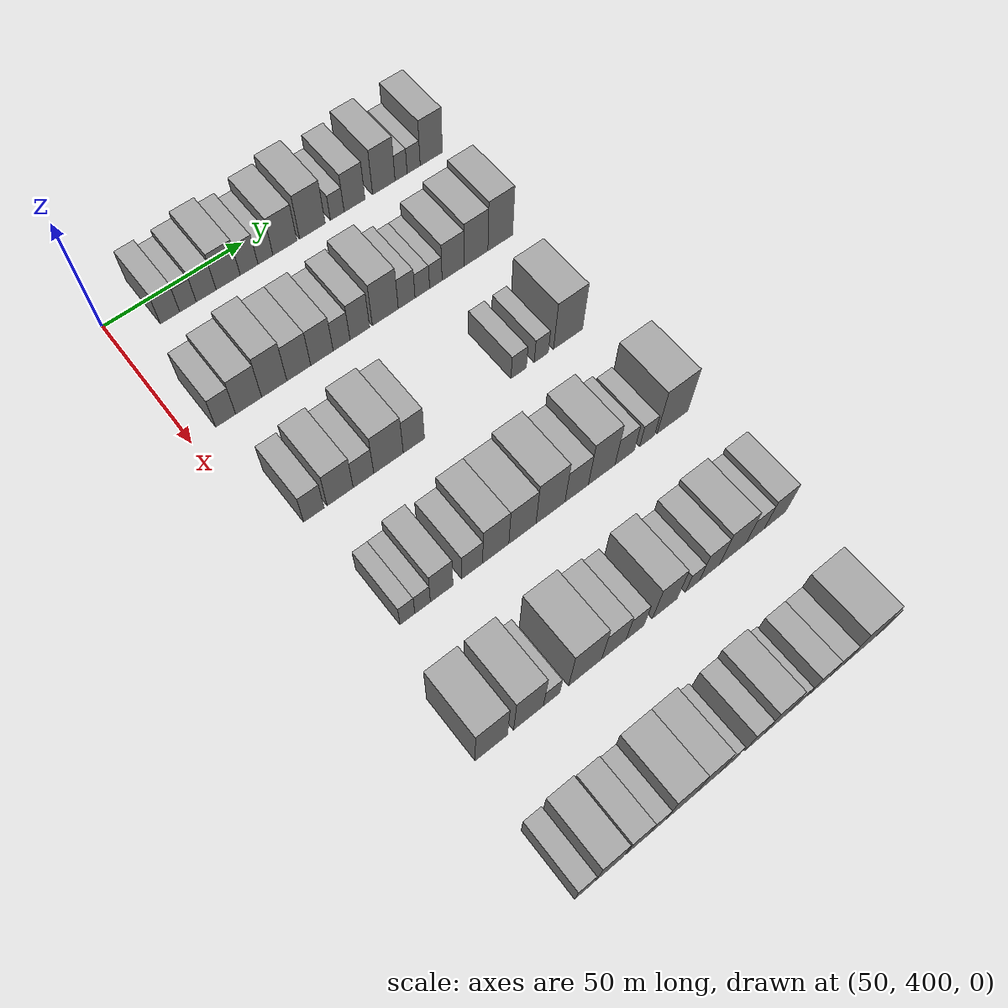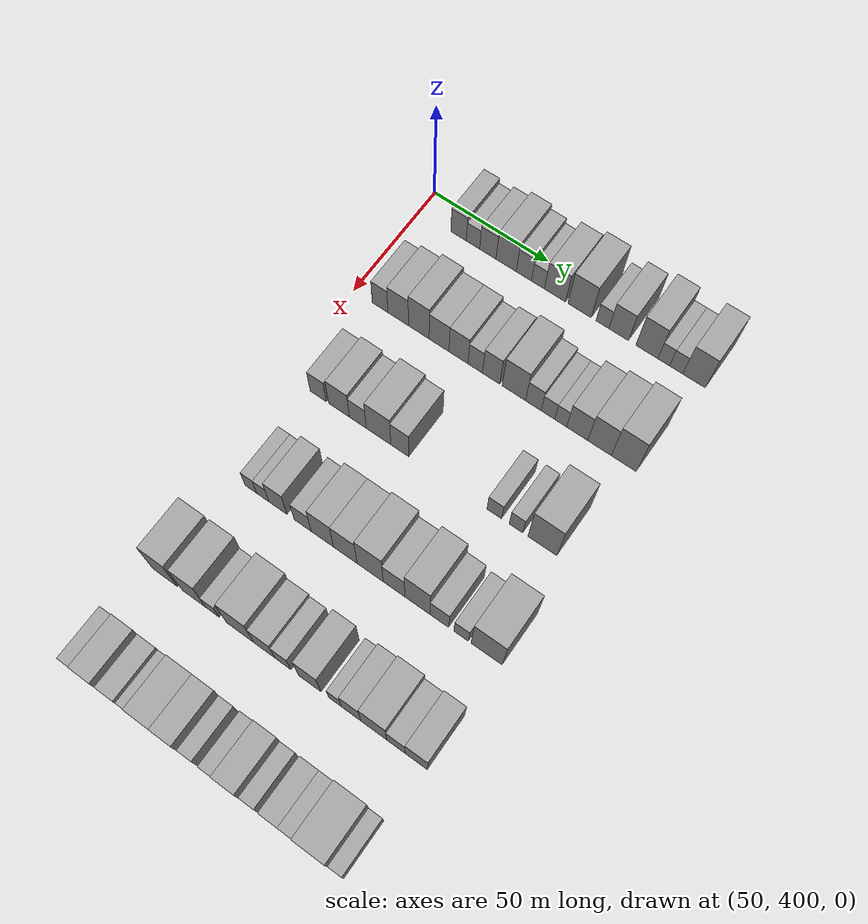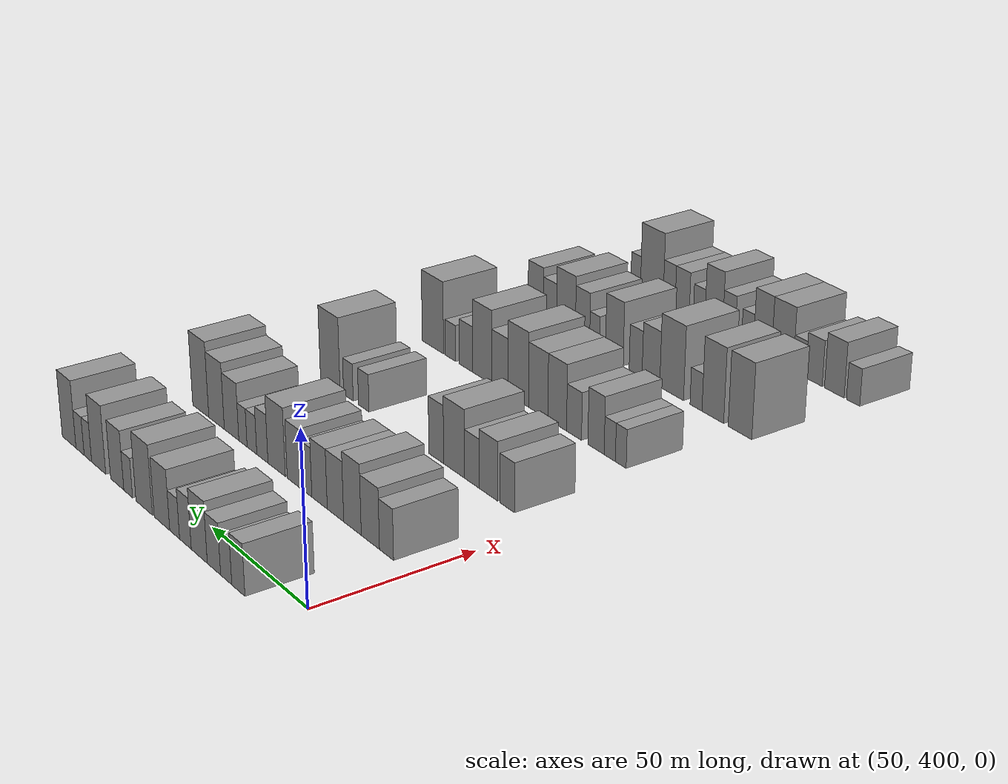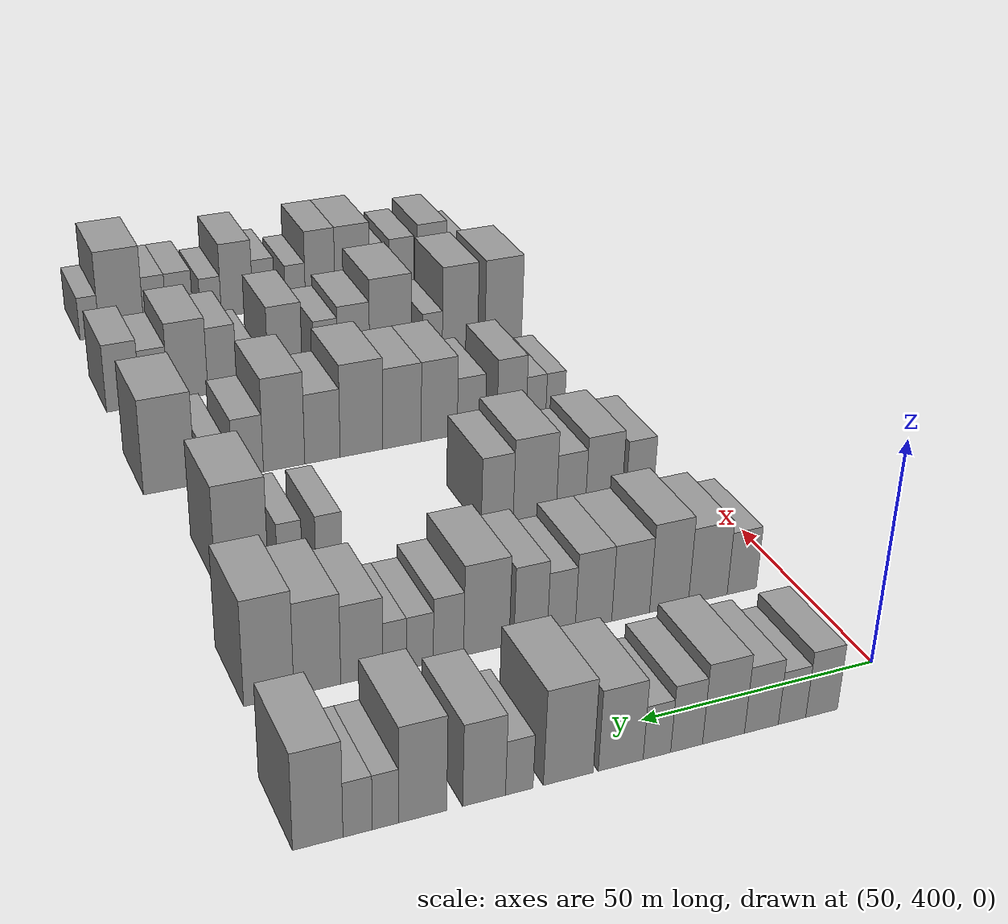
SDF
<sdf version="1.6">
 <world name="default">
  <model name="building_114">
   <static>1</static>
   <pose>50.0000 417.5932 0 0.000000 0.000000 0.000000</pose>
   <link name="link">
    <pose>0 0 7.50 0 0 0</pose>
    <collision name="collision"><geometry><box><size>20.0000 6.8262 15.0000</size></box></geometry></collision>
    <visual name="visual">
     <cast_shadows>0</cast_shadows>
     <geometry><box><size>20.0000 6.8262 15.0000</size></box></geometry>
     <material>
      <script>
       <uri>model://grey_wall/materials/scripts</uri>
       <uri>model://grey_wall/materials/textures</uri>
       <name>vrc/grey_wall</name>
      </script>
     </material>
    </visual>
   </link>
  </model>
  <model name="building_115">
   <static>1</static>
   <pose>50.0000 423.9390 0 0.000000 0.000000 0.000000</pose>
   <link name="link">
    <pose>0 0 6.00 0 0 0</pose>
    <collision name="collision"><geometry><box><size>20.0000 5.8653 12.0000</size></box></geometry></collision>
    <visual name="visual">
     <cast_shadows>0</cast_shadows>
     <geometry><box><size>20.0000 5.8653 12.0000</size></box></geometry>
     <material>
      <script>
       <uri>model://grey_wall/materials/scripts</uri>
       <uri>model://grey_wall/materials/textures</uri>
       <name>vrc/grey_wall</name>
      </script>
     </material>
    </visual>
   </link>
  </model>
  <model name="building_116">
   <static>1</static>
   <pose>50.0000 430.4370 0 0.000000 0.000000 0.000000</pose>
   <link name="link">
    <pose>0 0 7.50 0 0 0</pose>
    <collision name="collision"><geometry><box><size>20.0000 7.1307 15.0000</size></box></geometry></collision>
    <visual name="visual">
     <cast_shadows>0</cast_shadows>
     <geometry><box><size>20.0000 7.1307 15.0000</size></box></geometry>
     <material>
      <script>
       <uri>model://grey_wall/materials/scripts</uri>
       <uri>model://grey_wall/materials/textures</uri>
       <name>vrc/grey_wall</name>
      </script>
     </material>
    </visual>
   </link>
  </model>
  <model name="building_117">
   <static>1</static>
   <pose>50.0000 438.3695 0 0.000000 0.000000 0.000000</pose>
   <link name="link">
    <pose>0 0 9.00 0 0 0</pose>
    <collision name="collision"><geometry><box><size>20.0000 8.7342 18.0000</size></box></geometry></collision>
    <visual name="visual">
     <cast_shadows>0</cast_shadows>
     <geometry><box><size>20.0000 8.7342 18.0000</size></box></geometry>
     <material>
      <script>
       <uri>model://grey_wall/materials/scripts</uri>
       <uri>model://grey_wall/materials/textures</uri>
       <name>vrc/grey_wall</name>
      </script>
     </material>
    </visual>
   </link>
  </model>
  <model name="building_118">
   <static>1</static>
   <pose>50.0000 445.9997 0 0.000000 0.000000 0.000000</pose>
   <link name="link">
    <pose>0 0 7.50 0 0 0</pose>
    <collision name="collision"><geometry><box><size>20.0000 6.5263 15.0000</size></box></geometry></collision>
    <visual name="visual">
     <cast_shadows>0</cast_shadows>
     <geometry><box><size>20.0000 6.5263 15.0000</size></box></geometry>
     <material>
      <script>
       <uri>model://grey_wall/materials/scripts</uri>
       <uri>model://grey_wall/materials/textures</uri>
       <name>vrc/grey_wall</name>
      </script>
     </material>
    </visual>
   </link>
  </model>
  <model name="building_119">
   <static>1</static>
   <pose>50.0000 452.0477 0 0.000000 0.000000 0.000000</pose>
   <link name="link">
    <pose>0 0 6.00 0 0 0</pose>
    <collision name="collision"><geometry><box><size>20.0000 5.5697 12.0000</size></box></geometry></collision>
    <visual name="visual">
     <cast_shadows>0</cast_shadows>
     <geometry><box><size>20.0000 5.5697 12.0000</size></box></geometry>
     <material>
      <script>
       <uri>model://grey_wall/materials/scripts</uri>
       <uri>model://grey_wall/materials/textures</uri>
       <name>vrc/grey_wall</name>
      </script>
     </material>
    </visual>
   </link>
  </model>
  <model name="building_120">
   <static>1</static>
   <pose>50.0000 459.3215 0 0.000000 0.000000 0.000000</pose>
   <link name="link">
    <pose>0 0 9.00 0 0 0</pose>
    <collision name="collision"><geometry><box><size>20.0000 8.9779 18.0000</size></box></geometry></collision>
    <visual name="visual">
     <cast_shadows>0</cast_shadows>
     <geometry><box><size>20.0000 8.9779 18.0000</size></box></geometry>
     <material>
      <script>
       <uri>model://grey_wall/materials/scripts</uri>
       <uri>model://grey_wall/materials/textures</uri>
       <name>vrc/grey_wall</name>
      </script>
     </material>
    </visual>
   </link>
  </model>
  <model name="building_121">
   <static>1</static>
   <pose>50.0000 469.6960 0 0.000000 0.000000 0.000000</pose>
   <link name="link">
    <pose>0 0 10.50 0 0 0</pose>
    <collision name="collision"><geometry><box><size>20.0000 9.7711 21.0000</size></box></geometry></collision>
    <visual name="visual">
     <cast_shadows>0</cast_shadows>
     <geometry><box><size>20.0000 9.7711 21.0000</size></box></geometry>
     <material>
      <script>
       <uri>model://grey_wall/materials/scripts</uri>
       <uri>model://grey_wall/materials/textures</uri>
       <name>vrc/grey_wall</name>
      </script>
     </material>
    </visual>
   </link>
  </model>
  <model name="building_122">
   <static>1</static>
   <pose>50.0000 479.2384 0 0.000000 0.000000 0.000000</pose>
   <link name="link">
    <pose>0 0 6.00 0 0 0</pose>
    <collision name="collision"><geometry><box><size>20.0000 5.3136 12.0000</size></box></geometry></collision>
    <visual name="visual">
     <cast_shadows>0</cast_shadows>
     <geometry><box><size>20.0000 5.3136 12.0000</size></box></geometry>
     <material>
      <script>
       <uri>model://grey_wall/materials/scripts</uri>
       <uri>model://grey_wall/materials/textures</uri>
       <name>vrc/grey_wall</name>
      </script>
     </material>
    </visual>
   </link>
  </model>
  <model name="building_123">
   <static>1</static>
   <pose>50.0000 485.9661 0 0.000000 0.000000 0.000000</pose>
   <link name="link">
    <pose>0 0 9.00 0 0 0</pose>
    <collision name="collision"><geometry><box><size>20.0000 8.1418 18.0000</size></box></geometry></collision>
    <visual name="visual">
     <cast_shadows>0</cast_shadows>
     <geometry><box><size>20.0000 8.1418 18.0000</size></box></geometry>
     <material>
      <script>
       <uri>model://grey_wall/materials/scripts</uri>
       <uri>model://grey_wall/materials/textures</uri>
       <name>vrc/grey_wall</name>
      </script>
     </material>
    </visual>
   </link>
  </model>
  <model name="building_124">
   <static>1</static>
   <pose>50.0000 497.5120 0 0.000000 0.000000 0.000000</pose>
   <link name="link">
    <pose>0 0 10.50 0 0 0</pose>
    <collision name="collision"><geometry><box><size>20.0000 8.9500 21.0000</size></box></geometry></collision>
    <visual name="visual">
     <cast_shadows>0</cast_shadows>
     <geometry><box><size>20.0000 8.9500 21.0000</size></box></geometry>
     <material>
      <script>
       <uri>model://grey_wall/materials/scripts</uri>
       <uri>model://grey_wall/materials/textures</uri>
       <name>vrc/grey_wall</name>
      </script>
     </material>
    </visual>
   </link>
  </model>
  <model name="building_125">
   <static>1</static>
   <pose>50.0000 504.3932 0 0.000000 0.000000 0.000000</pose>
   <link name="link">
    <pose>0 0 6.00 0 0 0</pose>
    <collision name="collision"><geometry><box><size>20.0000 4.8125 12.0000</size></box></geometry></collision>
    <visual name="visual">
     <cast_shadows>0</cast_shadows>
     <geometry><box><size>20.0000 4.8125 12.0000</size></box></geometry>
     <material>
      <script>
       <uri>model://grey_wall/materials/scripts</uri>
       <uri>model://grey_wall/materials/textures</uri>
       <name>vrc/grey_wall</name>
      </script>
     </material>
    </visual>
   </link>
  </model>
  <model name="building_126">
   <static>1</static>
   <pose>50.0000 509.4515 0 0.000000 0.000000 0.000000</pose>
   <link name="link">
    <pose>0 0 6.00 0 0 0</pose>
    <collision name="collision"><geometry><box><size>20.0000 5.3040 12.0000</size></box></geometry></collision>
    <visual name="visual">
     <cast_shadows>0</cast_shadows>
     <geometry><box><size>20.0000 5.3040 12.0000</size></box></geometry>
     <material>
      <script>
       <uri>model://grey_wall/materials/scripts</uri>
       <uri>model://grey_wall/materials/textures</uri>
       <name>vrc/grey_wall</name>
      </script>
     </material>
    </visual>
   </link>
  </model>
  <model name="building_127">
   <static>1</static>
   <pose>50.0000 516.6309 0 0.000000 0.000000 0.000000</pose>
   <link name="link">
    <pose>0 0 10.50 0 0 0</pose>
    <collision name="collision"><geometry><box><size>20.0000 9.0547 21.0000</size></box></geometry></collision>
    <visual name="visual">
     <cast_shadows>0</cast_shadows>
     <geometry><box><size>20.0000 9.0547 21.0000</size></box></geometry>
     <material>
      <script>
       <uri>model://grey_wall/materials/scripts</uri>
       <uri>model://grey_wall/materials/textures</uri>
       <name>vrc/grey_wall</name>
      </script>
     </material>
    </visual>
   </link>
  </model>
  <model name="building_249">
   <static>1</static>
   <pose>90.0000 411.6209 0 0.000000 0.000000 0.000000</pose>
   <link name="link">
    <pose>0 0 7.50 0 0 0</pose>
    <collision name="collision"><geometry><box><size>20.0000 6.8179 15.0000</size></box></geometry></collision>
    <visual name="visual">
     <cast_shadows>0</cast_shadows>
     <geometry><box><size>20.0000 6.8179 15.0000</size></box></geometry>
     <material>
      <script>
       <uri>model://grey_wall/materials/scripts</uri>
       <uri>model://grey_wall/materials/textures</uri>
       <name>vrc/grey_wall</name>
      </script>
     </material>
    </visual>
   </link>
  </model>
  <model name="building_250">
   <static>1</static>
   <pose>90.0000 419.5177 0 0.000000 0.000000 0.000000</pose>
   <link name="link">
    <pose>0 0 9.00 0 0 0</pose>
    <collision name="collision"><geometry><box><size>20.0000 8.9758 18.0000</size></box></geometry></collision>
    <visual name="visual">
     <cast_shadows>0</cast_shadows>
     <geometry><box><size>20.0000 8.9758 18.0000</size></box></geometry>
     <material>
      <script>
       <uri>model://grey_wall/materials/scripts</uri>
       <uri>model://grey_wall/materials/textures</uri>
       <name>vrc/grey_wall</name>
      </script>
     </material>
    </visual>
   </link>
  </model>
  <model name="building_251">
   <static>1</static>
   <pose>90.0000 428.4254 0 0.000000 0.000000 0.000000</pose>
   <link name="link">
    <pose>0 0 10.50 0 0 0</pose>
    <collision name="collision"><geometry><box><size>20.0000 8.8394 21.0000</size></box></geometry></collision>
    <visual name="visual">
     <cast_shadows>0</cast_shadows>
     <geometry><box><size>20.0000 8.8394 21.0000</size></box></geometry>
     <material>
      <script>
       <uri>model://grey_wall/materials/scripts</uri>
       <uri>model://grey_wall/materials/textures</uri>
       <name>vrc/grey_wall</name>
      </script>
     </material>
    </visual>
   </link>
  </model>
  <model name="building_252">
   <static>1</static>
   <pose>90.0000 437.0895 0 0.000000 0.000000 0.000000</pose>
   <link name="link">
    <pose>0 0 9.00 0 0 0</pose>
    <collision name="collision"><geometry><box><size>20.0000 8.4889 18.0000</size></box></geometry></collision>
    <visual name="visual">
     <cast_shadows>0</cast_shadows>
     <geometry><box><size>20.0000 8.4889 18.0000</size></box></geometry>
     <material>
      <script>
       <uri>model://grey_wall/materials/scripts</uri>
       <uri>model://grey_wall/materials/textures</uri>
       <name>vrc/grey_wall</name>
      </script>
     </material>
    </visual>
   </link>
  </model>
  <model name="building_253">
   <static>1</static>
   <pose>90.0000 445.3743 0 0.000000 0.000000 0.000000</pose>
   <link name="link">
    <pose>0 0 9.00 0 0 0</pose>
    <collision name="collision"><geometry><box><size>20.0000 8.0807 18.0000</size></box></geometry></collision>
    <visual name="visual">
     <cast_shadows>0</cast_shadows>
     <geometry><box><size>20.0000 8.0807 18.0000</size></box></geometry>
     <material>
      <script>
       <uri>model://grey_wall/materials/scripts</uri>
       <uri>model://grey_wall/materials/textures</uri>
       <name>vrc/grey_wall</name>
      </script>
     </material>
    </visual>
   </link>
  </model>
  <model name="building_254">
   <static>1</static>
   <pose>90.0000 452.4753 0 0.000000 0.000000 0.000000</pose>
   <link name="link">
    <pose>0 0 7.50 0 0 0</pose>
    <collision name="collision"><geometry><box><size>20.0000 6.1213 15.0000</size></box></geometry></collision>
    <visual name="visual">
     <cast_shadows>0</cast_shadows>
     <geometry><box><size>20.0000 6.1213 15.0000</size></box></geometry>
     <material>
      <script>
       <uri>model://grey_wall/materials/scripts</uri>
       <uri>model://grey_wall/materials/textures</uri>
       <name>vrc/grey_wall</name>
      </script>
     </material>
    </visual>
   </link>
  </model>
  <model name="building_255">
   <static>1</static>
   <pose>90.0000 459.1482 0 0.000000 0.000000 0.000000</pose>
   <link name="link">
    <pose>0 0 9.00 0 0 0</pose>
    <collision name="collision"><geometry><box><size>20.0000 7.2246 18.0000</size></box></geometry></collision>
    <visual name="visual">
     <cast_shadows>0</cast_shadows>
     <geometry><box><size>20.0000 7.2246 18.0000</size></box></geometry>
     <material>
      <script>
       <uri>model://grey_wall/materials/scripts</uri>
       <uri>model://grey_wall/materials/textures</uri>
       <name>vrc/grey_wall</name>
      </script>
     </material>
    </visual>
   </link>
  </model>
  <model name="building_256">
   <static>1</static>
   <pose>90.0000 468.6027 0 0.000000 0.000000 0.000000</pose>
   <link name="link">
    <pose>0 0 10.50 0 0 0</pose>
    <collision name="collision"><geometry><box><size>20.0000 9.6843 21.0000</size></box></geometry></collision>
    <visual name="visual">
     <cast_shadows>0</cast_shadows>
     <geometry><box><size>20.0000 9.6843 21.0000</size></box></geometry>
     <material>
      <script>
       <uri>model://grey_wall/materials/scripts</uri>
       <uri>model://grey_wall/materials/textures</uri>
       <name>vrc/grey_wall</name>
      </script>
     </material>
    </visual>
   </link>
  </model>
  <model name="building_257">
   <static>1</static>
   <pose>90.0000 476.6241 0 0.000000 0.000000 0.000000</pose>
   <link name="link">
    <pose>0 0 7.50 0 0 0</pose>
    <collision name="collision"><geometry><box><size>20.0000 6.3584 15.0000</size></box></geometry></collision>
    <visual name="visual">
     <cast_shadows>0</cast_shadows>
     <geometry><box><size>20.0000 6.3584 15.0000</size></box></geometry>
     <material>
      <script>
       <uri>model://grey_wall/materials/scripts</uri>
       <uri>model://grey_wall/materials/textures</uri>
       <name>vrc/grey_wall</name>
      </script>
     </material>
    </visual>
   </link>
  </model>
  <model name="building_258">
   <static>1</static>
   <pose>90.0000 482.5900 0 0.000000 0.000000 0.000000</pose>
   <link name="link">
    <pose>0 0 6.00 0 0 0</pose>
    <collision name="collision"><geometry><box><size>20.0000 5.5734 12.0000</size></box></geometry></collision>
    <visual name="visual">
     <cast_shadows>0</cast_shadows>
     <geometry><box><size>20.0000 5.5734 12.0000</size></box></geometry>
     <material>
      <script>
       <uri>model://grey_wall/materials/scripts</uri>
       <uri>model://grey_wall/materials/textures</uri>
       <name>vrc/grey_wall</name>
      </script>
     </material>
    </visual>
   </link>
  </model>
  <model name="building_259">
   <static>1</static>
   <pose>90.0000 487.7816 0 0.000000 0.000000 0.000000</pose>
   <link name="link">
    <pose>0 0 6.00 0 0 0</pose>
    <collision name="collision"><geometry><box><size>20.0000 4.8100 12.0000</size></box></geometry></collision>
    <visual name="visual">
     <cast_shadows>0</cast_shadows>
     <geometry><box><size>20.0000 4.8100 12.0000</size></box></geometry>
     <material>
      <script>
       <uri>model://grey_wall/materials/scripts</uri>
       <uri>model://grey_wall/materials/textures</uri>
       <name>vrc/grey_wall</name>
      </script>
     </material>
    </visual>
   </link>
  </model>
  <model name="building_260">
   <static>1</static>
   <pose>90.0000 494.4795 0 0.000000 0.000000 0.000000</pose>
   <link name="link">
    <pose>0 0 9.00 0 0 0</pose>
    <collision name="collision"><geometry><box><size>20.0000 8.5857 18.0000</size></box></geometry></collision>
    <visual name="visual">
     <cast_shadows>0</cast_shadows>
     <geometry><box><size>20.0000 8.5857 18.0000</size></box></geometry>
     <material>
      <script>
       <uri>model://grey_wall/materials/scripts</uri>
       <uri>model://grey_wall/materials/textures</uri>
       <name>vrc/grey_wall</name>
      </script>
     </material>
    </visual>
   </link>
  </model>
  <model name="building_261">
   <static>1</static>
   <pose>90.0000 503.4653 0 0.000000 0.000000 0.000000</pose>
   <link name="link">
    <pose>0 0 10.50 0 0 0</pose>
    <collision name="collision"><geometry><box><size>20.0000 9.3860 21.0000</size></box></geometry></collision>
    <visual name="visual">
     <cast_shadows>0</cast_shadows>
     <geometry><box><size>20.0000 9.3860 21.0000</size></box></geometry>
     <material>
      <script>
       <uri>model://grey_wall/materials/scripts</uri>
       <uri>model://grey_wall/materials/textures</uri>
       <name>vrc/grey_wall</name>
      </script>
     </material>
    </visual>
   </link>
  </model>
  <model name="building_262">
   <static>1</static>
   <pose>90.0000 513.0955 0 0.000000 0.000000 0.000000</pose>
   <link name="link">
    <pose>0 0 12.00 0 0 0</pose>
    <collision name="collision"><geometry><box><size>20.0000 9.8744 24.0000</size></box></geometry></collision>
    <visual name="visual">
     <cast_shadows>0</cast_shadows>
     <geometry><box><size>20.0000 9.8744 24.0000</size></box></geometry>
     <material>
      <script>
       <uri>model://grey_wall/materials/scripts</uri>
       <uri>model://grey_wall/materials/textures</uri>
       <name>vrc/grey_wall</name>
      </script>
     </material>
    </visual>
   </link>
  </model>
  <model name="building_391">
   <static>1</static>
   <pose>130.0000 414.6228 0 0.000000 0.000000 0.000000</pose>
   <link name="link">
    <pose>0 0 7.50 0 0 0</pose>
    <collision name="collision"><geometry><box><size>20.0000 6.9147 15.0000</size></box></geometry></collision>
    <visual name="visual">
     <cast_shadows>0</cast_shadows>
     <geometry><box><size>20.0000 6.9147 15.0000</size></box></geometry>
     <material>
      <script>
       <uri>model://grey_wall/materials/scripts</uri>
       <uri>model://grey_wall/materials/textures</uri>
       <name>vrc/grey_wall</name>
      </script>
     </material>
    </visual>
   </link>
  </model>
  <model name="building_392">
   <static>1</static>
   <pose>130.0000 423.5350 0 0.000000 0.000000 0.000000</pose>
   <link name="link">
    <pose>0 0 9.00 0 0 0</pose>
    <collision name="collision"><geometry><box><size>20.0000 8.9096 18.0000</size></box></geometry></collision>
    <visual name="visual">
     <cast_shadows>0</cast_shadows>
     <geometry><box><size>20.0000 8.9096 18.0000</size></box></geometry>
     <material>
      <script>
       <uri>model://grey_wall/materials/scripts</uri>
       <uri>model://grey_wall/materials/textures</uri>
       <name>vrc/grey_wall</name>
      </script>
     </material>
    </visual>
   </link>
  </model>
  <model name="building_393">
   <static>1</static>
   <pose>130.0000 431.5417 0 0.000000 0.000000 0.000000</pose>
   <link name="link">
    <pose>0 0 7.50 0 0 0</pose>
    <collision name="collision"><geometry><box><size>20.0000 7.1038 15.0000</size></box></geometry></collision>
    <visual name="visual">
     <cast_shadows>0</cast_shadows>
     <geometry><box><size>20.0000 7.1038 15.0000</size></box></geometry>
     <material>
      <script>
       <uri>model://grey_wall/materials/scripts</uri>
       <uri>model://grey_wall/materials/textures</uri>
       <name>vrc/grey_wall</name>
      </script>
     </material>
    </visual>
   </link>
  </model>
  <model name="building_394">
   <static>1</static>
   <pose>130.0000 440.2475 0 0.000000 0.000000 0.000000</pose>
   <link name="link">
    <pose>0 0 10.50 0 0 0</pose>
    <collision name="collision"><geometry><box><size>20.0000 10.3077 21.0000</size></box></geometry></collision>
    <visual name="visual">
     <cast_shadows>0</cast_shadows>
     <geometry><box><size>20.0000 10.3077 21.0000</size></box></geometry>
     <material>
      <script>
       <uri>model://grey_wall/materials/scripts</uri>
       <uri>model://grey_wall/materials/textures</uri>
       <name>vrc/grey_wall</name>
      </script>
     </material>
    </visual>
   </link>
  </model>
  <model name="building_395">
   <static>1</static>
   <pose>130.0000 449.1606 0 0.000000 0.000000 0.000000</pose>
   <link name="link">
    <pose>0 0 9.00 0 0 0</pose>
    <collision name="collision"><geometry><box><size>20.0000 7.5187 18.0000</size></box></geometry></collision>
    <visual name="visual">
     <cast_shadows>0</cast_shadows>
     <geometry><box><size>20.0000 7.5187 18.0000</size></box></geometry>
     <material>
      <script>
       <uri>model://grey_wall/materials/scripts</uri>
       <uri>model://grey_wall/materials/textures</uri>
       <name>vrc/grey_wall</name>
      </script>
     </material>
    </visual>
   </link>
  </model>
  <model name="building_396">
   <static>1</static>
   <pose>130.0000 487.6850 0 0.000000 0.000000 0.000000</pose>
   <link name="link">
    <pose>0 0 6.00 0 0 0</pose>
    <collision name="collision"><geometry><box><size>20.0000 5.8433 12.0000</size></box></geometry></collision>
    <visual name="visual">
     <cast_shadows>0</cast_shadows>
     <geometry><box><size>20.0000 5.8433 12.0000</size></box></geometry>
     <material>
      <script>
       <uri>model://grey_wall/materials/scripts</uri>
       <uri>model://grey_wall/materials/textures</uri>
       <name>vrc/grey_wall</name>
      </script>
     </material>
    </visual>
   </link>
  </model>
  <model name="building_397">
   <static>1</static>
   <pose>130.0000 496.3202 0 0.000000 0.000000 0.000000</pose>
   <link name="link">
    <pose>0 0 6.00 0 0 0</pose>
    <collision name="collision"><geometry><box><size>20.0000 5.4271 12.0000</size></box></geometry></collision>
    <visual name="visual">
     <cast_shadows>0</cast_shadows>
     <geometry><box><size>20.0000 5.4271 12.0000</size></box></geometry>
     <material>
      <script>
       <uri>model://grey_wall/materials/scripts</uri>
       <uri>model://grey_wall/materials/textures</uri>
       <name>vrc/grey_wall</name>
      </script>
     </material>
    </visual>
   </link>
  </model>
  <model name="building_398">
   <static>1</static>
   <pose>130.0000 506.7186 0 0.000000 0.000000 0.000000</pose>
   <link name="link">
    <pose>0 0 12.00 0 0 0</pose>
    <collision name="collision"><geometry><box><size>20.0000 11.3697 24.0000</size></box></geometry></collision>
    <visual name="visual">
     <cast_shadows>0</cast_shadows>
     <geometry><box><size>20.0000 11.3697 24.0000</size></box></geometry>
     <material>
      <script>
       <uri>model://grey_wall/materials/scripts</uri>
       <uri>model://grey_wall/materials/textures</uri>
       <name>vrc/grey_wall</name>
      </script>
     </material>
    </visual>
   </link>
  </model>
  <model name="building_518">
   <static>1</static>
   <pose>170.0000 416.8625 0 0.000000 0.000000 0.000000</pose>
   <link name="link">
    <pose>0 0 6.00 0 0 0</pose>
    <collision name="collision"><geometry><box><size>20.0000 4.9308 12.0000</size></box></geometry></collision>
    <visual name="visual">
     <cast_shadows>0</cast_shadows>
     <geometry><box><size>20.0000 4.9308 12.0000</size></box></geometry>
     <material>
      <script>
       <uri>model://grey_wall/materials/scripts</uri>
       <uri>model://grey_wall/materials/textures</uri>
       <name>vrc/grey_wall</name>
      </script>
     </material>
    </visual>
   </link>
  </model>
  <model name="building_519">
   <static>1</static>
   <pose>170.0000 421.9048 0 0.000000 0.000000 0.000000</pose>
   <link name="link">
    <pose>0 0 6.00 0 0 0</pose>
    <collision name="collision"><geometry><box><size>20.0000 5.1538 12.0000</size></box></geometry></collision>
    <visual name="visual">
     <cast_shadows>0</cast_shadows>
     <geometry><box><size>20.0000 5.1538 12.0000</size></box></geometry>
     <material>
      <script>
       <uri>model://grey_wall/materials/scripts</uri>
       <uri>model://grey_wall/materials/textures</uri>
       <name>vrc/grey_wall</name>
      </script>
     </material>
    </visual>
   </link>
  </model>
  <model name="building_520">
   <static>1</static>
   <pose>170.0000 428.2785 0 0.000000 0.000000 0.000000</pose>
   <link name="link">
    <pose>0 0 9.00 0 0 0</pose>
    <collision name="collision"><geometry><box><size>20.0000 7.5936 18.0000</size></box></geometry></collision>
    <visual name="visual">
     <cast_shadows>0</cast_shadows>
     <geometry><box><size>20.0000 7.5936 18.0000</size></box></geometry>
     <material>
      <script>
       <uri>model://grey_wall/materials/scripts</uri>
       <uri>model://grey_wall/materials/textures</uri>
       <name>vrc/grey_wall</name>
      </script>
     </material>
    </visual>
   </link>
  </model>
  <model name="building_521">
   <static>1</static>
   <pose>170.0000 438.6627 0 0.000000 0.000000 0.000000</pose>
   <link name="link">
    <pose>0 0 7.50 0 0 0</pose>
    <collision name="collision"><geometry><box><size>20.0000 7.1748 15.0000</size></box></geometry></collision>
    <visual name="visual">
     <cast_shadows>0</cast_shadows>
     <geometry><box><size>20.0000 7.1748 15.0000</size></box></geometry>
     <material>
      <script>
       <uri>model://grey_wall/materials/scripts</uri>
       <uri>model://grey_wall/materials/textures</uri>
       <name>vrc/grey_wall</name>
      </script>
     </material>
    </visual>
   </link>
  </model>
  <model name="building_522">
   <static>1</static>
   <pose>170.0000 446.8082 0 0.000000 0.000000 0.000000</pose>
   <link name="link">
    <pose>0 0 10.50 0 0 0</pose>
    <collision name="collision"><geometry><box><size>20.0000 9.1161 21.0000</size></box></geometry></collision>
    <visual name="visual">
     <cast_shadows>0</cast_shadows>
     <geometry><box><size>20.0000 9.1161 21.0000</size></box></geometry>
     <material>
      <script>
       <uri>model://grey_wall/materials/scripts</uri>
       <uri>model://grey_wall/materials/textures</uri>
       <name>vrc/grey_wall</name>
      </script>
     </material>
    </visual>
   </link>
  </model>
  <model name="building_523">
   <static>1</static>
   <pose>170.0000 456.1679 0 0.000000 0.000000 0.000000</pose>
   <link name="link">
    <pose>0 0 10.50 0 0 0</pose>
    <collision name="collision"><geometry><box><size>20.0000 9.6033 21.0000</size></box></geometry></collision>
    <visual name="visual">
     <cast_shadows>0</cast_shadows>
     <geometry><box><size>20.0000 9.6033 21.0000</size></box></geometry>
     <material>
      <script>
       <uri>model://grey_wall/materials/scripts</uri>
       <uri>model://grey_wall/materials/textures</uri>
       <name>vrc/grey_wall</name>
      </script>
     </material>
    </visual>
   </link>
  </model>
  <model name="building_524">
   <static>1</static>
   <pose>170.0000 466.2206 0 0.000000 0.000000 0.000000</pose>
   <link name="link">
    <pose>0 0 12.00 0 0 0</pose>
    <collision name="collision"><geometry><box><size>20.0000 10.5021 24.0000</size></box></geometry></collision>
    <visual name="visual">
     <cast_shadows>0</cast_shadows>
     <geometry><box><size>20.0000 10.5021 24.0000</size></box></geometry>
     <material>
      <script>
       <uri>model://grey_wall/materials/scripts</uri>
       <uri>model://grey_wall/materials/textures</uri>
       <name>vrc/grey_wall</name>
      </script>
     </material>
    </visual>
   </link>
  </model>
  <model name="building_525">
   <static>1</static>
   <pose>170.0000 475.7613 0 0.000000 0.000000 0.000000</pose>
   <link name="link">
    <pose>0 0 9.00 0 0 0</pose>
    <collision name="collision"><geometry><box><size>20.0000 8.5793 18.0000</size></box></geometry></collision>
    <visual name="visual">
     <cast_shadows>0</cast_shadows>
     <geometry><box><size>20.0000 8.5793 18.0000</size></box></geometry>
     <material>
      <script>
       <uri>model://grey_wall/materials/scripts</uri>
       <uri>model://grey_wall/materials/textures</uri>
       <name>vrc/grey_wall</name>
      </script>
     </material>
    </visual>
   </link>
  </model>
  <model name="building_526">
   <static>1</static>
   <pose>170.0000 485.0105 0 0.000000 0.000000 0.000000</pose>
   <link name="link">
    <pose>0 0 12.00 0 0 0</pose>
    <collision name="collision"><geometry><box><size>20.0000 9.9190 24.0000</size></box></geometry></collision>
    <visual name="visual">
     <cast_shadows>0</cast_shadows>
     <geometry><box><size>20.0000 9.9190 24.0000</size></box></geometry>
     <material>
      <script>
       <uri>model://grey_wall/materials/scripts</uri>
       <uri>model://grey_wall/materials/textures</uri>
       <name>vrc/grey_wall</name>
      </script>
     </material>
    </visual>
   </link>
  </model>
  <model name="building_527">
   <static>1</static>
   <pose>170.0000 493.6312 0 0.000000 0.000000 0.000000</pose>
   <link name="link">
    <pose>0 0 7.50 0 0 0</pose>
    <collision name="collision"><geometry><box><size>20.0000 7.3224 15.0000</size></box></geometry></collision>
    <visual name="visual">
     <cast_shadows>0</cast_shadows>
     <geometry><box><size>20.0000 7.3224 15.0000</size></box></geometry>
     <material>
      <script>
       <uri>model://grey_wall/materials/scripts</uri>
       <uri>model://grey_wall/materials/textures</uri>
       <name>vrc/grey_wall</name>
      </script>
     </material>
    </visual>
   </link>
  </model>
  <model name="building_528">
   <static>1</static>
   <pose>170.0000 502.1313 0 0.000000 0.000000 0.000000</pose>
   <link name="link">
    <pose>0 0 6.00 0 0 0</pose>
    <collision name="collision"><geometry><box><size>20.0000 5.6780 12.0000</size></box></geometry></collision>
    <visual name="visual">
     <cast_shadows>0</cast_shadows>
     <geometry><box><size>20.0000 5.6780 12.0000</size></box></geometry>
     <material>
      <script>
       <uri>model://grey_wall/materials/scripts</uri>
       <uri>model://grey_wall/materials/textures</uri>
       <name>vrc/grey_wall</name>
      </script>
     </material>
    </visual>
   </link>
  </model>
  <model name="building_529">
   <static>1</static>
   <pose>170.0000 511.9603 0 0.000000 0.000000 0.000000</pose>
   <link name="link">
    <pose>0 0 12.00 0 0 0</pose>
    <collision name="collision"><geometry><box><size>20.0000 11.9799 24.0000</size></box></geometry></collision>
    <visual name="visual">
     <cast_shadows>0</cast_shadows>
     <geometry><box><size>20.0000 11.9799 24.0000</size></box></geometry>
     <material>
      <script>
       <uri>model://grey_wall/materials/scripts</uri>
       <uri>model://grey_wall/materials/textures</uri>
       <name>vrc/grey_wall</name>
      </script>
     </material>
    </visual>
   </link>
  </model>
  <model name="building_659">
   <static>1</static>
   <pose>210.0000 413.1487 0 0.000000 0.000000 0.000000</pose>
   <link name="link">
    <pose>0 0 12.00 0 0 0</pose>
    <collision name="collision"><geometry><box><size>20.0000 10.3820 24.0000</size></box></geometry></collision>
    <visual name="visual">
     <cast_shadows>0</cast_shadows>
     <geometry><box><size>20.0000 10.3820 24.0000</size></box></geometry>
     <material>
      <script>
       <uri>model://grey_wall/materials/scripts</uri>
       <uri>model://grey_wall/materials/textures</uri>
       <name>vrc/grey_wall</name>
      </script>
     </material>
    </visual>
   </link>
  </model>
  <model name="building_660">
   <static>1</static>
   <pose>210.0000 425.2373 0 0.000000 0.000000 0.000000</pose>
   <link name="link">
    <pose>0 0 12.00 0 0 0</pose>
    <collision name="collision"><geometry><box><size>20.0000 9.7952 24.0000</size></box></geometry></collision>
    <visual name="visual">
     <cast_shadows>0</cast_shadows>
     <geometry><box><size>20.0000 9.7952 24.0000</size></box></geometry>
     <material>
      <script>
       <uri>model://grey_wall/materials/scripts</uri>
       <uri>model://grey_wall/materials/textures</uri>
       <name>vrc/grey_wall</name>
      </script>
     </material>
    </visual>
   </link>
  </model>
  <model name="building_661">
   <static>1</static>
   <pose>210.0000 432.8817 0 0.000000 0.000000 0.000000</pose>
   <link name="link">
    <pose>0 0 6.00 0 0 0</pose>
    <collision name="collision"><geometry><box><size>20.0000 5.4937 12.0000</size></box></geometry></collision>
    <visual name="visual">
     <cast_shadows>0</cast_shadows>
     <geometry><box><size>20.0000 5.4937 12.0000</size></box></geometry>
     <material>
      <script>
       <uri>model://grey_wall/materials/scripts</uri>
       <uri>model://grey_wall/materials/textures</uri>
       <name>vrc/grey_wall</name>
      </script>
     </material>
    </visual>
   </link>
  </model>
  <model name="building_662">
   <static>1</static>
   <pose>210.0000 444.2529 0 0.000000 0.000000 0.000000</pose>
   <link name="link">
    <pose>0 0 12.00 0 0 0</pose>
    <collision name="collision"><geometry><box><size>20.0000 11.2487 24.0000</size></box></geometry></collision>
    <visual name="visual">
     <cast_shadows>0</cast_shadows>
     <geometry><box><size>20.0000 11.2487 24.0000</size></box></geometry>
     <material>
      <script>
       <uri>model://grey_wall/materials/scripts</uri>
       <uri>model://grey_wall/materials/textures</uri>
       <name>vrc/grey_wall</name>
      </script>
     </material>
    </visual>
   </link>
  </model>
  <model name="building_663">
   <static>1</static>
   <pose>210.0000 454.1322 0 0.000000 0.000000 0.000000</pose>
   <link name="link">
    <pose>0 0 9.00 0 0 0</pose>
    <collision name="collision"><geometry><box><size>20.0000 8.5099 18.0000</size></box></geometry></collision>
    <visual name="visual">
     <cast_shadows>0</cast_shadows>
     <geometry><box><size>20.0000 8.5099 18.0000</size></box></geometry>
     <material>
      <script>
       <uri>model://grey_wall/materials/scripts</uri>
       <uri>model://grey_wall/materials/textures</uri>
       <name>vrc/grey_wall</name>
      </script>
     </material>
    </visual>
   </link>
  </model>
  <model name="building_664">
   <static>1</static>
   <pose>210.0000 461.5579 0 0.000000 0.000000 0.000000</pose>
   <link name="link">
    <pose>0 0 7.50 0 0 0</pose>
    <collision name="collision"><geometry><box><size>20.0000 6.3414 15.0000</size></box></geometry></collision>
    <visual name="visual">
     <cast_shadows>0</cast_shadows>
     <geometry><box><size>20.0000 6.3414 15.0000</size></box></geometry>
     <material>
      <script>
       <uri>model://grey_wall/materials/scripts</uri>
       <uri>model://grey_wall/materials/textures</uri>
       <name>vrc/grey_wall</name>
      </script>
     </material>
    </visual>
   </link>
  </model>
  <model name="building_665">
   <static>1</static>
   <pose>210.0000 472.1653 0 0.000000 0.000000 0.000000</pose>
   <link name="link">
    <pose>0 0 10.50 0 0 0</pose>
    <collision name="collision"><geometry><box><size>20.0000 8.8735 21.0000</size></box></geometry></collision>
    <visual name="visual">
     <cast_shadows>0</cast_shadows>
     <geometry><box><size>20.0000 8.8735 21.0000</size></box></geometry>
     <material>
      <script>
       <uri>model://grey_wall/materials/scripts</uri>
       <uri>model://grey_wall/materials/textures</uri>
       <name>vrc/grey_wall</name>
      </script>
     </material>
    </visual>
   </link>
  </model>
  <model name="building_666">
   <static>1</static>
   <pose>210.0000 482.1311 0 0.000000 0.000000 0.000000</pose>
   <link name="link">
    <pose>0 0 6.00 0 0 0</pose>
    <collision name="collision"><geometry><box><size>20.0000 5.0583 12.0000</size></box></geometry></collision>
    <visual name="visual">
     <cast_shadows>0</cast_shadows>
     <geometry><box><size>20.0000 5.0583 12.0000</size></box></geometry>
     <material>
      <script>
       <uri>model://grey_wall/materials/scripts</uri>
       <uri>model://grey_wall/materials/textures</uri>
       <name>vrc/grey_wall</name>
      </script>
     </material>
    </visual>
   </link>
  </model>
  <model name="building_667">
   <static>1</static>
   <pose>210.0000 488.3618 0 0.000000 0.000000 0.000000</pose>
   <link name="link">
    <pose>0 0 9.00 0 0 0</pose>
    <collision name="collision"><geometry><box><size>20.0000 7.4031 18.0000</size></box></geometry></collision>
    <visual name="visual">
     <cast_shadows>0</cast_shadows>
     <geometry><box><size>20.0000 7.4031 18.0000</size></box></geometry>
     <material>
      <script>
       <uri>model://grey_wall/materials/scripts</uri>
       <uri>model://grey_wall/materials/textures</uri>
       <name>vrc/grey_wall</name>
      </script>
     </material>
    </visual>
   </link>
  </model>
  <model name="building_668">
   <static>1</static>
   <pose>210.0000 497.0484 0 0.000000 0.000000 0.000000</pose>
   <link name="link">
    <pose>0 0 10.50 0 0 0</pose>
    <collision name="collision"><geometry><box><size>20.0000 9.9700 21.0000</size></box></geometry></collision>
    <visual name="visual">
     <cast_shadows>0</cast_shadows>
     <geometry><box><size>20.0000 9.9700 21.0000</size></box></geometry>
     <material>
      <script>
       <uri>model://grey_wall/materials/scripts</uri>
       <uri>model://grey_wall/materials/textures</uri>
       <name>vrc/grey_wall</name>
      </script>
     </material>
    </visual>
   </link>
  </model>
  <model name="building_669">
   <static>1</static>
   <pose>210.0000 505.5493 0 0.000000 0.000000 0.000000</pose>
   <link name="link">
    <pose>0 0 7.50 0 0 0</pose>
    <collision name="collision"><geometry><box><size>20.0000 7.0320 15.0000</size></box></geometry></collision>
    <visual name="visual">
     <cast_shadows>0</cast_shadows>
     <geometry><box><size>20.0000 7.0320 15.0000</size></box></geometry>
     <material>
      <script>
       <uri>model://grey_wall/materials/scripts</uri>
       <uri>model://grey_wall/materials/textures</uri>
       <name>vrc/grey_wall</name>
      </script>
     </material>
    </visual>
   </link>
  </model>
  <model name="building_670">
   <static>1</static>
   <pose>210.0000 513.2288 0 0.000000 0.000000 0.000000</pose>
   <link name="link">
    <pose>0 0 9.00 0 0 0</pose>
    <collision name="collision"><geometry><box><size>20.0000 8.3271 18.0000</size></box></geometry></collision>
    <visual name="visual">
     <cast_shadows>0</cast_shadows>
     <geometry><box><size>20.0000 8.3271 18.0000</size></box></geometry>
     <material>
      <script>
       <uri>model://grey_wall/materials/scripts</uri>
       <uri>model://grey_wall/materials/textures</uri>
       <name>vrc/grey_wall</name>
      </script>
     </material>
    </visual>
   </link>
  </model>
  <model name="building_790">
   <static>1</static>
   <pose>250.0000 409.2272 0 0.000000 0.000000 0.000000</pose>
   <link name="link">
    <pose>0 0 6.00 0 0 0</pose>
    <collision name="collision"><geometry><box><size>20.0000 5.6748 12.0000</size></box></geometry></collision>
    <visual name="visual">
     <cast_shadows>0</cast_shadows>
     <geometry><box><size>20.0000 5.6748 12.0000</size></box></geometry>
     <material>
      <script>
       <uri>model://grey_wall/materials/scripts</uri>
       <uri>model://grey_wall/materials/textures</uri>
       <name>vrc/grey_wall</name>
      </script>
     </material>
    </visual>
   </link>
  </model>
  <model name="building_791">
   <static>1</static>
   <pose>250.0000 417.3356 0 0.000000 0.000000 0.000000</pose>
   <link name="link">
    <pose>0 0 9.00 0 0 0</pose>
    <collision name="collision"><geometry><box><size>20.0000 8.5420 18.0000</size></box></geometry></collision>
    <visual name="visual">
     <cast_shadows>0</cast_shadows>
     <geometry><box><size>20.0000 8.5420 18.0000</size></box></geometry>
     <material>
      <script>
       <uri>model://grey_wall/materials/scripts</uri>
       <uri>model://grey_wall/materials/textures</uri>
       <name>vrc/grey_wall</name>
      </script>
     </material>
    </visual>
   </link>
  </model>
  <model name="building_792">
   <static>1</static>
   <pose>250.0000 426.2635 0 0.000000 0.000000 0.000000</pose>
   <link name="link">
    <pose>0 0 7.50 0 0 0</pose>
    <collision name="collision"><geometry><box><size>20.0000 7.3138 15.0000</size></box></geometry></collision>
    <visual name="visual">
     <cast_shadows>0</cast_shadows>
     <geometry><box><size>20.0000 7.3138 15.0000</size></box></geometry>
     <material>
      <script>
       <uri>model://grey_wall/materials/scripts</uri>
       <uri>model://grey_wall/materials/textures</uri>
       <name>vrc/grey_wall</name>
      </script>
     </material>
    </visual>
   </link>
  </model>
  <model name="building_793">
   <static>1</static>
   <pose>250.0000 432.7490 0 0.000000 0.000000 0.000000</pose>
   <link name="link">
    <pose>0 0 6.00 0 0 0</pose>
    <collision name="collision"><geometry><box><size>20.0000 5.6574 12.0000</size></box></geometry></collision>
    <visual name="visual">
     <cast_shadows>0</cast_shadows>
     <geometry><box><size>20.0000 5.6574 12.0000</size></box></geometry>
     <material>
      <script>
       <uri>model://grey_wall/materials/scripts</uri>
       <uri>model://grey_wall/materials/textures</uri>
       <name>vrc/grey_wall</name>
      </script>
     </material>
    </visual>
   </link>
  </model>
  <model name="building_794">
   <static>1</static>
   <pose>250.0000 440.5534 0 0.000000 0.000000 0.000000</pose>
   <link name="link">
    <pose>0 0 10.50 0 0 0</pose>
    <collision name="collision"><geometry><box><size>20.0000 9.9513 21.0000</size></box></geometry></collision>
    <visual name="visual">
     <cast_shadows>0</cast_shadows>
     <geometry><box><size>20.0000 9.9513 21.0000</size></box></geometry>
     <material>
      <script>
       <uri>model://grey_wall/materials/scripts</uri>
       <uri>model://grey_wall/materials/textures</uri>
       <name>vrc/grey_wall</name>
      </script>
     </material>
    </visual>
   </link>
  </model>
  <model name="building_795">
   <static>1</static>
   <pose>250.0000 449.7405 0 0.000000 0.000000 0.000000</pose>
   <link name="link">
    <pose>0 0 10.50 0 0 0</pose>
    <collision name="collision"><geometry><box><size>20.0000 8.4228 21.0000</size></box></geometry></collision>
    <visual name="visual">
     <cast_shadows>0</cast_shadows>
     <geometry><box><size>20.0000 8.4228 21.0000</size></box></geometry>
     <material>
      <script>
       <uri>model://grey_wall/materials/scripts</uri>
       <uri>model://grey_wall/materials/textures</uri>
       <name>vrc/grey_wall</name>
      </script>
     </material>
    </visual>
   </link>
  </model>
  <model name="building_796">
   <static>1</static>
   <pose>250.0000 456.7823 0 0.000000 0.000000 0.000000</pose>
   <link name="link">
    <pose>0 0 6.00 0 0 0</pose>
    <collision name="collision"><geometry><box><size>20.0000 5.6609 12.0000</size></box></geometry></collision>
    <visual name="visual">
     <cast_shadows>0</cast_shadows>
     <geometry><box><size>20.0000 5.6609 12.0000</size></box></geometry>
     <material>
      <script>
       <uri>model://grey_wall/materials/scripts</uri>
       <uri>model://grey_wall/materials/textures</uri>
       <name>vrc/grey_wall</name>
      </script>
     </material>
    </visual>
   </link>
  </model>
  <model name="building_797">
   <static>1</static>
   <pose>250.0000 465.6518 0 0.000000 0.000000 0.000000</pose>
   <link name="link">
    <pose>0 0 7.50 0 0 0</pose>
    <collision name="collision"><geometry><box><size>20.0000 6.0780 15.0000</size></box></geometry></collision>
    <visual name="visual">
     <cast_shadows>0</cast_shadows>
     <geometry><box><size>20.0000 6.0780 15.0000</size></box></geometry>
     <material>
      <script>
       <uri>model://grey_wall/materials/scripts</uri>
       <uri>model://grey_wall/materials/textures</uri>
       <name>vrc/grey_wall</name>
      </script>
     </material>
    </visual>
   </link>
  </model>
  <model name="building_798">
   <static>1</static>
   <pose>250.0000 473.0559 0 0.000000 0.000000 0.000000</pose>
   <link name="link">
    <pose>0 0 10.50 0 0 0</pose>
    <collision name="collision"><geometry><box><size>20.0000 8.7303 21.0000</size></box></geometry></collision>
    <visual name="visual">
     <cast_shadows>0</cast_shadows>
     <geometry><box><size>20.0000 8.7303 21.0000</size></box></geometry>
     <material>
      <script>
       <uri>model://grey_wall/materials/scripts</uri>
       <uri>model://grey_wall/materials/textures</uri>
       <name>vrc/grey_wall</name>
      </script>
     </material>
    </visual>
   </link>
  </model>
  <model name="building_799">
   <static>1</static>
   <pose>250.0000 480.2917 0 0.000000 0.000000 0.000000</pose>
   <link name="link">
    <pose>0 0 6.00 0 0 0</pose>
    <collision name="collision"><geometry><box><size>20.0000 5.7413 12.0000</size></box></geometry></collision>
    <visual name="visual">
     <cast_shadows>0</cast_shadows>
     <geometry><box><size>20.0000 5.7413 12.0000</size></box></geometry>
     <material>
      <script>
       <uri>model://grey_wall/materials/scripts</uri>
       <uri>model://grey_wall/materials/textures</uri>
       <name>vrc/grey_wall</name>
      </script>
     </material>
    </visual>
   </link>
  </model>
  <model name="building_800">
   <static>1</static>
   <pose>250.0000 488.7522 0 0.000000 0.000000 0.000000</pose>
   <link name="link">
    <pose>0 0 7.50 0 0 0</pose>
    <collision name="collision"><geometry><box><size>20.0000 7.1797 15.0000</size></box></geometry></collision>
    <visual name="visual">
     <cast_shadows>0</cast_shadows>
     <geometry><box><size>20.0000 7.1797 15.0000</size></box></geometry>
     <material>
      <script>
       <uri>model://grey_wall/materials/scripts</uri>
       <uri>model://grey_wall/materials/textures</uri>
       <name>vrc/grey_wall</name>
      </script>
     </material>
    </visual>
   </link>
  </model>
  <model name="building_801">
   <static>1</static>
   <pose>250.0000 495.4017 0 0.000000 0.000000 0.000000</pose>
   <link name="link">
    <pose>0 0 7.50 0 0 0</pose>
    <collision name="collision"><geometry><box><size>20.0000 6.1192 15.0000</size></box></geometry></collision>
    <visual name="visual">
     <cast_shadows>0</cast_shadows>
     <geometry><box><size>20.0000 6.1192 15.0000</size></box></geometry>
     <material>
      <script>
       <uri>model://grey_wall/materials/scripts</uri>
       <uri>model://grey_wall/materials/textures</uri>
       <name>vrc/grey_wall</name>
      </script>
     </material>
    </visual>
   </link>
  </model>
  <model name="building_802">
   <static>1</static>
   <pose>250.0000 504.3982 0 0.000000 0.000000 0.000000</pose>
   <link name="link">
    <pose>0 0 12.00 0 0 0</pose>
    <collision name="collision"><geometry><box><size>20.0000 11.8739 24.0000</size></box></geometry></collision>
    <visual name="visual">
     <cast_shadows>0</cast_shadows>
     <geometry><box><size>20.0000 11.8739 24.0000</size></box></geometry>
     <material>
      <script>
       <uri>model://grey_wall/materials/scripts</uri>
       <uri>model://grey_wall/materials/textures</uri>
       <name>vrc/grey_wall</name>
      </script>
     </material>
    </visual>
   </link>
  </model>
  <model name="building_803">
   <static>1</static>
   <pose>250.0000 512.8944 0 0.000000 0.000000 0.000000</pose>
   <link name="link">
    <pose>0 0 6.00 0 0 0</pose>
    <collision name="collision"><geometry><box><size>20.0000 5.1186 12.0000</size></box></geometry></collision>
    <visual name="visual">
     <cast_shadows>0</cast_shadows>
     <geometry><box><size>20.0000 5.1186 12.0000</size></box></geometry>
     <material>
      <script>
       <uri>model://grey_wall/materials/scripts</uri>
       <uri>model://grey_wall/materials/textures</uri>
       <name>vrc/grey_wall</name>
      </script>
     </material>
    </visual>
   </link>
  </model>
 </world>
</sdf>
